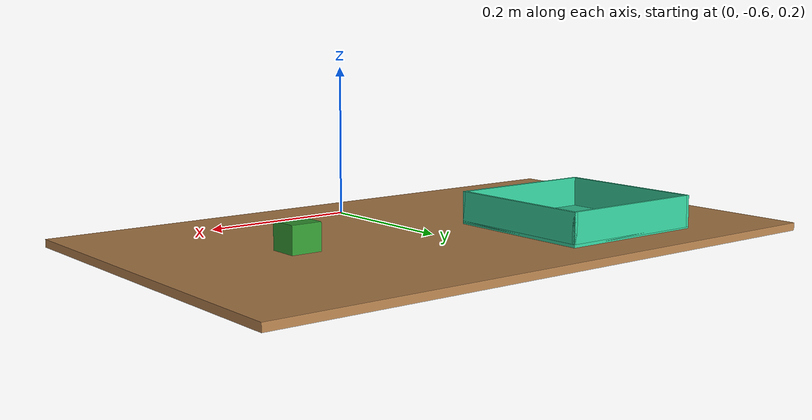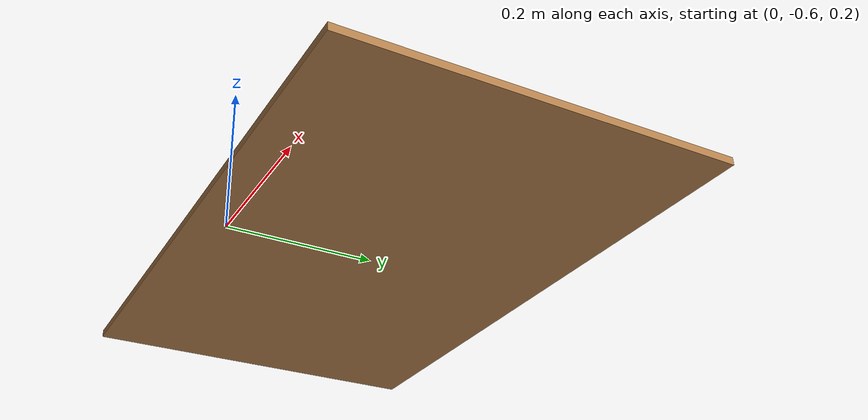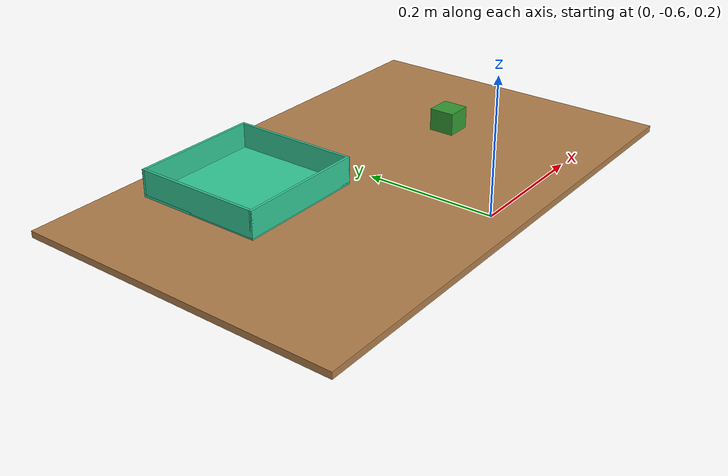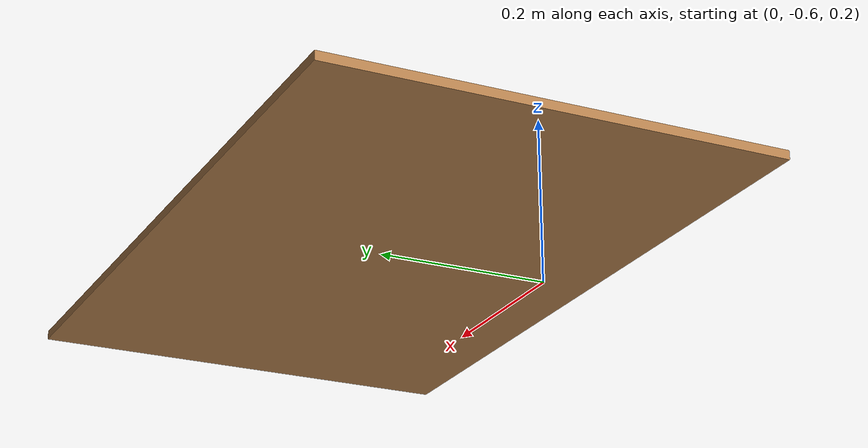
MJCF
<mujoco model="mesh_model">
  <asset>
    <!-- Add your mesh file here -->
    <mesh name="your_mesh" file="assets/white_mesh.stl" scale="0.07 0.07 0.07"/>
  </asset>

  <default>
    <default class="mesh_object">
      <!-- Changed from box to mesh -->
      <geom type="mesh" mesh="your_mesh" rgba="0.96 0.26 0.33 1.0" density="1240" solref="0.004 1" contype="3" group="1"/>
      <site type="sphere" size=".005" rgba="0 0 1 1" group="5"/>
    </default>
  </default>

  <worldbody>

    <geom name="table" type="box" size="0.4 0.25 0.005" pos="0.0 -0.4 0.2" rgba="0.7 0.5 0.3 1"/>

    <body name="hollow_bin" pos="-0.15 -0.3 0.21">
      <geom name="bin_bottom" type="box" size="0.1 0.1 0.002" pos="0 0 0" rgba="0.2 0.8 0.6 1"/>

      <!-- Front wall -->
      <geom name="bin_front" type="box" size="0.1 0.002 0.02" pos="0 0.098 0.02" rgba="0.2 0.8 0.6 1"/>

      <!-- Back wall -->
      <geom name="bin_back" type="box" size="0.1 0.002 0.02" pos="0 -0.098 0.02" rgba="0.2 0.8 0.6 1"/>

      <!-- Left wall -->
      <geom name="bin_left" type="box" size="0.002 0.1 0.02" pos="-0.098 0 0.02" rgba="0.2 0.8 0.6 1"/>

      <!-- Right wall -->
      <geom name="bin_right" type="box" size="0.002 0.1 0.02" pos="0.098 0 0.02" rgba="0.2 0.8 0.6 1"/>
    </body>

    <body name="cube_blue" pos="0.2 -0.4 0.22" quat="0.5 0.5 0.5 0.5">
      <freejoint name="cube_joint_0"/>
      <inertial pos="0 0 0" mass="0.01" diaginertia="0.0001 0.0001 0.0001"/>
      <geom name="cube_blue" type="box" size="0.02 0.02 0.02" rgba="0.2 0.6 0.2 1"/>
    </body>

  </worldbody>
</mujoco>
